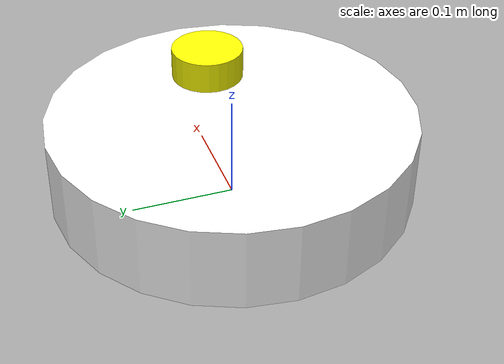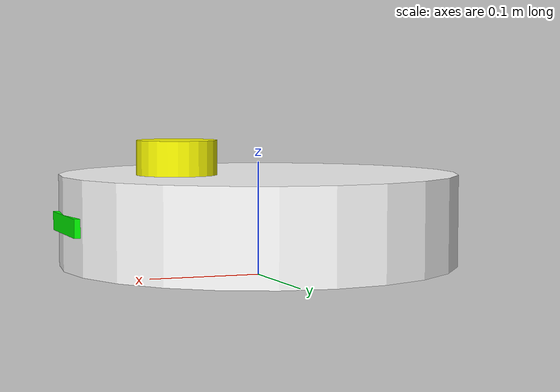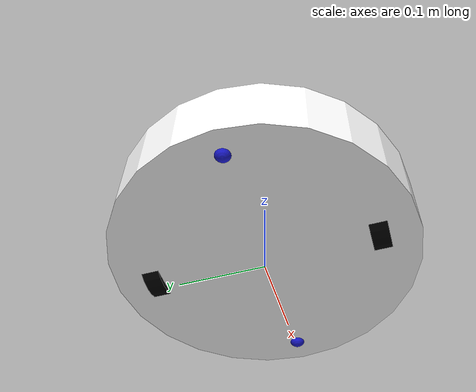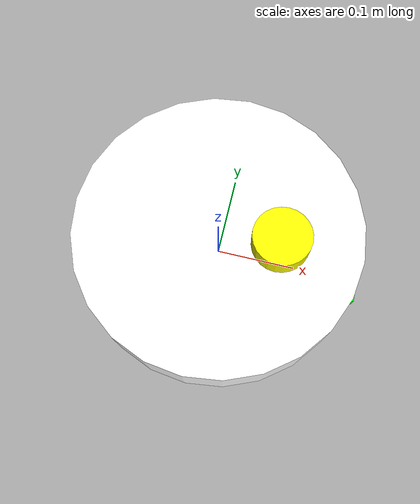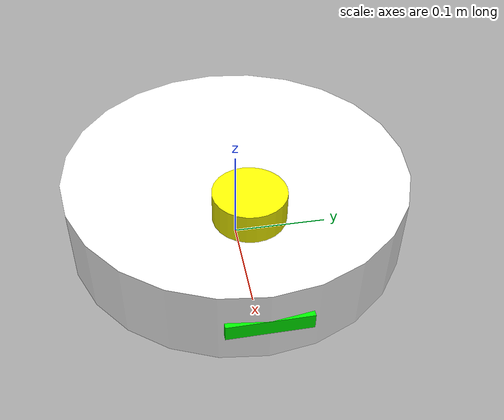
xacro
<?xml version="1.0"?>
<robot xmlns:xacro="http://www.ros.org/wiki/xacro" name="iodine">
<xacro:property name="base_radius"    value="0.175" />
<xacro:property name="base_height"   value="0.08" />
<xacro:property name="wheel_separation" value="0.26" />
<xacro:property name="wheel_radius"     value="0.04" />
<xacro:property name="wheel_offset"     value="0.005" />
<xacro:property name="wheel_width"      value="0.02" />
<xacro:property name="sphere_radius"    value="0.01" />
<xacro:property name="lidar_radius"    value="0.035" />
<xacro:property name="lidar_height"   value="0.03" />
<xacro:property name="box_length"    value="0.02" />
<xacro:property name="box_width"   value="0.016" />
<xacro:property name="box_height"    value="0.08" />
<xacro:property name="footprint_z"      value="${base_height/2 + sphere_radius}" />
<xacro:property name="control_config"   value="$(find iodine_description)/config/diff_drive_control.yaml" />

    <!-- LINKS -->
    <link name="base_footprint"/>

    <link name="base_link">
        <visual>
            <geometry>
                <cylinder radius="${base_radius}" length="${base_height}"/>
            </geometry>
            <origin rpy="0 0 0" xyz="0 0 0"/>
            <material name="white">
                <color rgba="1 1 1 1"/>
            </material>
        </visual>

        <collision>
            <geometry>
                <cylinder length="${base_height}" radius="${base_radius}"/>
            </geometry>
            <origin rpy="0 0 0" xyz="0 0 0"/>
        </collision>

        <inertial>
            <origin xyz="0 0 0" rpy="0 0 0"/>
            <mass value="4.2"/>
            <inertia ixx="0.0344" ixy="0.0" ixz="0.0" iyy="0.0344" iyz="0.0" izz="0.0643"/>
        </inertial>
    </link>

    <link name="right_wheel">
        <visual>
            <geometry>
                <cylinder length="${wheel_width}" radius="${wheel_radius}" />
            </geometry>
            <origin rpy="1.5707 0 0" xyz="0 0 0"/>
            <material name="black">
                <color rgba="0 0 0 1.0"/>
            </material>
        </visual>

        <collision>
            <geometry>
                <cylinder length="${wheel_width}" radius="${wheel_radius}" />
            </geometry>
            <origin rpy="1.5707 0 0" xyz="0 0 0"/>
        </collision>

        <inertial>
            <mass value="0.1"/>
            <inertia ixx="0.0000433" ixy="0.0" ixz="0.0" iyy="0.0000433" iyz="0.0" izz="0.00008"/>
        </inertial>
    </link>

    <link name="left_wheel">
        <visual>
            <geometry>
                <cylinder length="${wheel_width}" radius="${wheel_radius}" />
            </geometry>
            <origin rpy="1.5707 0 0" xyz="0 0 0"/>
            <material name="black">
                <color rgba="0 0 0 1.0"/>
            </material>
        </visual>

        <collision>
            <geometry>
                <cylinder length="${wheel_width}" radius="${wheel_radius}" />
            </geometry>
            <origin rpy="1.5707 0 0" xyz="0 0 0"/>
        </collision>

        <inertial>
            <mass value="0.1"/>
            <inertia ixx="0.0000433" ixy="0.0" ixz="0.0" iyy="0.0000433" iyz="0.0" izz="0.00008"/>
        </inertial>
    </link>

    <link name="front_ball_caster">
        <visual>
            <geometry>
                <sphere radius="${sphere_radius}" />
            </geometry>
            <origin rpy="0 0 0" xyz="0 0 0"/>
            <material name="blue">
                <color rgba="0.1 0.1 0.8 1"/>
            </material>
        </visual>

        <collision>
            <geometry>
                <sphere radius="${sphere_radius}" />
            </geometry>
            <origin rpy="0 0 0" xyz="0 0 0"/>
        </collision>

        <inertial>
            <mass value="0.06"/>
            <inertia ixx="0.0000024" ixy="0.0" ixz="0.0" iyy="0.0000024" iyz="0.0" izz="0.0000024"/>
        </inertial>
    </link>

    <link name="back_ball_caster">
        <visual>
            <geometry>
                <sphere radius="${sphere_radius}" />
            </geometry>
            <origin rpy="0 0 0" xyz="0 0 0"/>
            <material name="blue">
                <color rgba="0.1 0.1 0.8 1"/>
            </material>
        </visual>

        <collision>
            <geometry>
                <sphere radius="${sphere_radius}" />
            </geometry>
            <origin rpy="0 0 0" xyz="0 0 0"/>
        </collision>

        <inertial>
            <mass value="0.06"/>
            <inertia ixx="0.0000024" ixy="0.0" ixz="0.0" iyy="0.0000024" iyz="0.0" izz="0.0000024"/>
        </inertial>
    </link>

    <link name="chassis_link">
    </link>

    <link name="imu_link">
    </link>

    <link name="lidar_link">
        <visual>
            <geometry>
                <cylinder length= "${lidar_height}" radius="${lidar_radius}"/>
            </geometry>
            <origin rpy="0 0 0" xyz="0 0 0"/>
            <material name="yellow">
                <color rgba="1 1 0 1"/>
            </material>
        </visual>

        <collision>
            <geometry>
                <cylinder length= "${lidar_height}" radius="${lidar_radius}"/>
            </geometry>
            <origin rpy="0 0 0" xyz="0 0 0"/>
        </collision>

        <inertial>
            <mass value="0.2"/>
            <inertia ixx="0.00007625" ixy="0.0" ixz="0.0" iyy="0.00007625" iyz="0.0" izz="0.0001225"/>
        </inertial>
    </link>

    <link name="depth_camera_link">
        <visual>
            <geometry>
                <box size="${box_length} ${box_width} ${box_height}"/>
            </geometry>
            <origin rpy="1.57 0 0" xyz="0 0 0"/>
            <material name="green">
                <color rgba="0 1 0 1"/>
            </material>
        </visual>

        <collision>
            <geometry>
                <box size="${box_length} ${box_width} ${box_height}"/>
            </geometry>
            <origin rpy="1.57 0 0" xyz="0 0 0"/>
        </collision>

        <inertial>
            <mass value="0.08"/>
            <inertia ixx="0.000044373" ixy="0.0" ixz="0.0" iyy="0.000045333" iyz="0.0" izz="0.0000043733"/>
        </inertial>
    </link>

    <!-- JOINTS -->
    <joint name="base_footprint_joint" type="fixed">
        <parent link="base_footprint"/>
        <child link="base_link"/>
        <origin xyz="0 0 ${footprint_z}" rpy="0 0 0"/>
    </joint>

    <joint name="right_wheel_joint" type="continuous">
        <parent link="base_link"/>
        <child link="right_wheel"/>
        <origin xyz="0 -0.13 -0.005" rpy="0 0 0"/>
        <axis xyz="0 1 0"/>
    </joint>

    <joint name="left_wheel_joint" type="continuous">
        <parent link="base_link"/>
        <child link="left_wheel"/>
        <origin xyz="0 0.13 -0.005" rpy="0 0 0"/>
        <axis xyz="0 1 0"/>
    </joint>

    <joint name="front_ball_caster_joint" type="fixed">
        <parent link="base_link"/>
        <child link="front_ball_caster"/>
        <origin xyz="0.145 0.0 -0.035" rpy="0 0 0"/>
    </joint>

    <joint name="back_ball_caster_joint" type="fixed">
        <parent link="base_link"/>
        <child link="back_ball_caster"/>
        <origin xyz="-0.145 0.0 -0.035" rpy="0 0 0"/>
    </joint>

    <joint name="chassis_joint" type="fixed">
        <parent link="base_link"/>
        <child link="chassis_link"/>
        <origin xyz="0 0 ${base_height/2}" rpy="0 0 0"/>
    </joint>

    <joint name="imu_joint" type="fixed">
        <parent link="base_link"/>
        <child link="imu_link"/>
        <origin xyz="0 0 0" rpy="0 0 0"/>
    </joint>

    <joint name="lidar_joint" type="fixed">
        <parent link="base_link"/>
        <child link="lidar_link"/>
        <origin xyz="0.075 0 0.055" rpy="0 0 0"/>
    </joint>

    <joint name="camera_joint" type="fixed">
        <parent link="base_link"/>
        <child link="depth_camera_link"/>
        <origin xyz="0.165 0 0" rpy="0 0 0"/>
    </joint>

    <!-- GAZEBO PLUGINS -->
    <!-- Differential Drive - https://gazebosim.org/api/gazebo/4.5/classignition_1_1gazebo_1_1systems_1_1DiffDrive.html [gazebosim.org] -->
    <gazebo>
        <plugin filename="ignition-gazebo-diff-drive-system" name="ignition::gazebo::systems::DiffDrive">
            <left_joint>left_wheel_joint</left_joint>
            <right_joint>right_wheel_joint</right_joint>

            <!-- Kinematics -->
            <wheel_separation>${wheel_separation}</wheel_separation>
            <wheel_radius>${wheel_radius}</wheel_radius>

            <odom_publish_frequency>50</odom_publish_frequency>

            <!-- TF Frames -->
            <frame_id>/odom</frame_id>
            <child_frame_id>/base_footprint</child_frame_id>

            <!-- topics -->
            <topic>/model/iodine/cmd_vel</topic>
            <odom_topic>/model/iodine/odometry</odom_topic>
            <tf_topic>/model/iodine/tf</tf_topic>
        </plugin>
    </gazebo>

    <gazebo>
        <plugin filename="ignition-gazebo-joint-state-publisher-system" name="ignition::gazebo::systems::JointStatePublisher">
            <update_rate>50</update_rate>
            <joint_name>right_wheel_joint</joint_name>
            <joint_name>left_wheel_joint</joint_name>
        </plugin>
    </gazebo>

    <gazebo reference="right_wheel">
        <mu1 value="1.0"/>
        <mu2 value="1.0"/>
    </gazebo>

    <gazebo reference="left_wheel">
        <mu1 value="1.0"/>
        <mu2 value="1.0"/>
    </gazebo>

    <gazebo reference="front_ball_caster">
        <mu1 value="0.001"/>
        <mu2 value="0.001"/>
    </gazebo>

    <gazebo reference="back_ball_caster">
        <mu1 value="0.001"/>
        <mu2 value="0.001"/>
    </gazebo>

    <gazebo reference="lidar_link">
        <sensor type="gpu_lidar" name="lidar_sensor">
            <topic>/model/iodine/scan</topic>
            <frame_id>lidar_link</frame_id>
            <ignition_frame_id>lidar_link</ignition_frame_id>
            <update_rate>10.0</update_rate>
            <ray>
                <scan>
                    <horizontal>
                        <samples>1024</samples>
                        <resolution>1</resolution>
                        <min_angle>-2.35619</min_angle>
                        <max_angle>2.35619</max_angle>
                    </horizontal>
                </scan>
                <range>
                    <min>0.2</min>
                    <max>20.0</max>
                    <resolution>0.03</resolution>
                </range>
            </ray>
            <always_on>true</always_on>
            <visualize>true</visualize>
        </sensor>
    </gazebo>

    <gazebo>
        <plugin filename="libignition-gazebo-sensors-system.so" name="ignition::gazebo::systems::Sensors">
            <render_engine>ogre2</render_engine>
        </plugin>
    </gazebo>

    <gazebo reference="depth_camera_link">
        <sensor type="depth" name="depth_camera_sensor">
            <update_rate>60.0</update_rate>
            <camera>
                <horizontal_fov>1.5184</horizontal_fov>
                <image>
                    <width>1280</width>
                    <height>720</height>
                    <format>R8G8B8</format>
                </image>
                <clip>
                    <near>0.3</near>
                    <far>4.0</far>
                </clip>
            </camera>
            <topic>/model/iodine/depth</topic>
            <frame_id>depth_camera_link</frame_id>
            <always_on>1</always_on>
            <visualize>true</visualize>
        </sensor>
    </gazebo>

    <gazebo reference="imu_link">
        <sensor type="imu" name="imu_sensor">
            <pose>0 0 0 0 0 0</pose>
            <update_rate>100.0</update_rate>
            <imu>
                <angular_velocity>
                    <x>0.0</x>
                    <y>0.0</y>
                    <z>0.0</z>
                </angular_velocity>
                <linear_acceleration>
                    <x>0.0</x>
                    <y>0.0</y>
                    <z>0.0</z>
                </linear_acceleration>
            </imu>
            <plugin filename="libignition-gazebo-imu-system.so" name="ignition::gazebo::systems::Imu">
                <topic>/model/iodine/imu</topic>
                <frame_id>imu_link</frame_id>
            </plugin>
        </sensor>
    </gazebo>
</robot>
